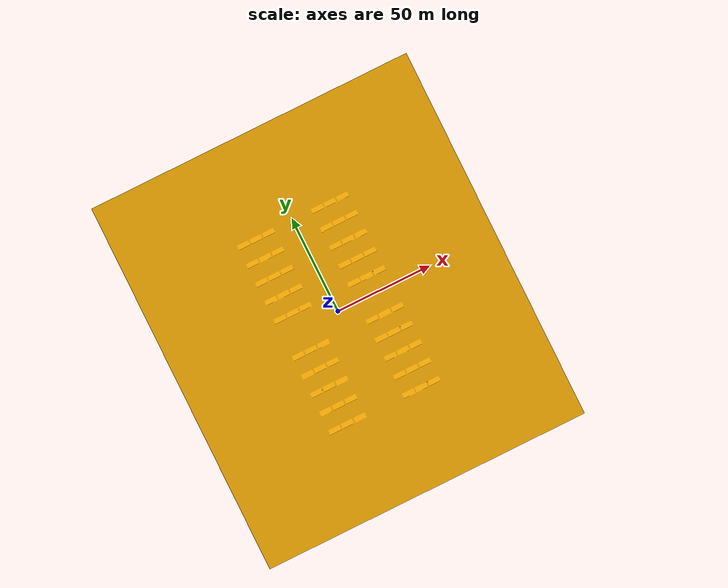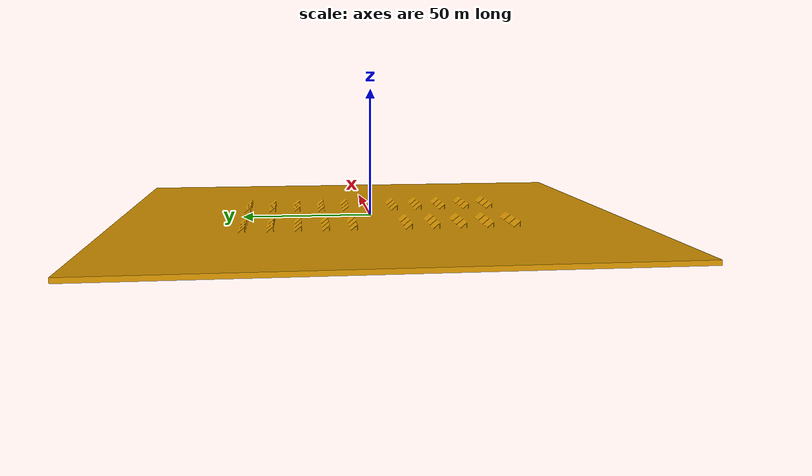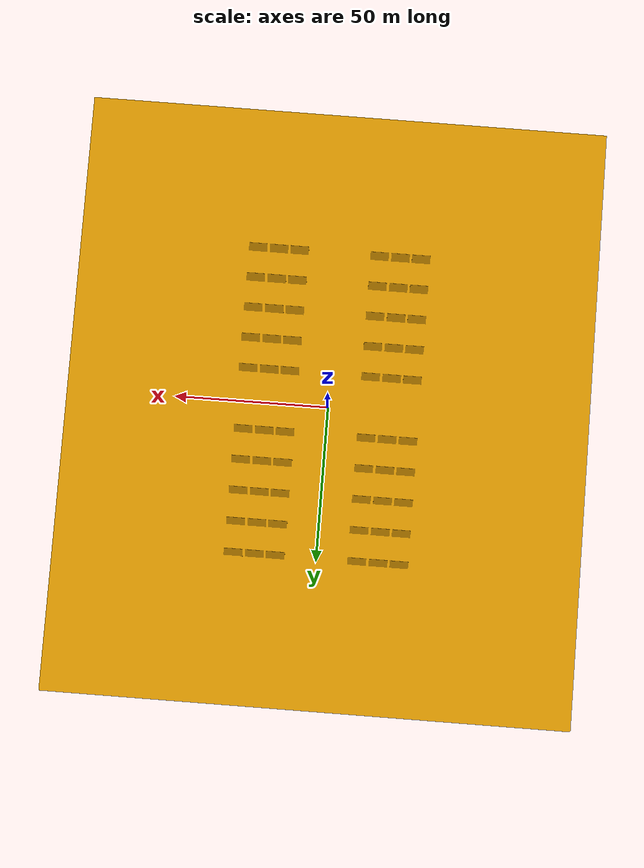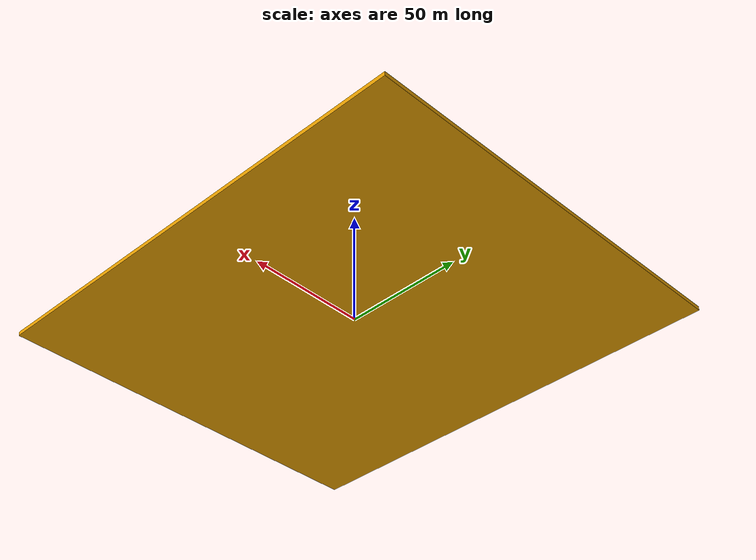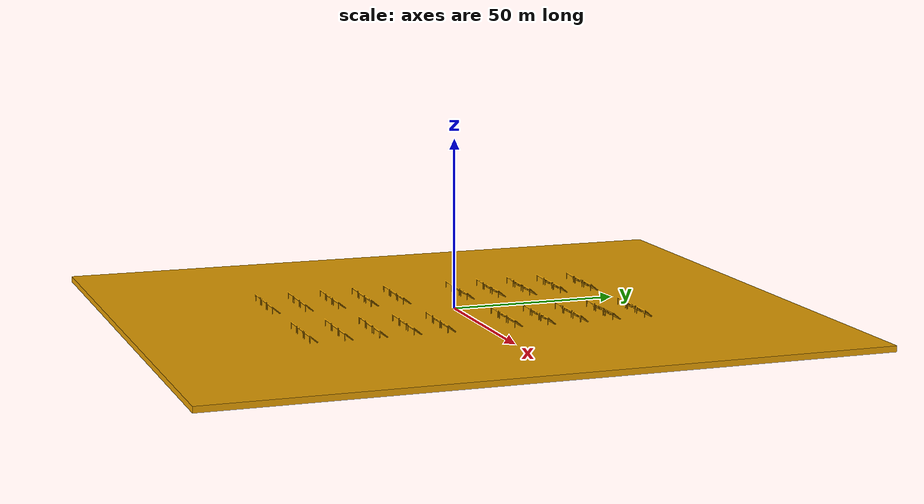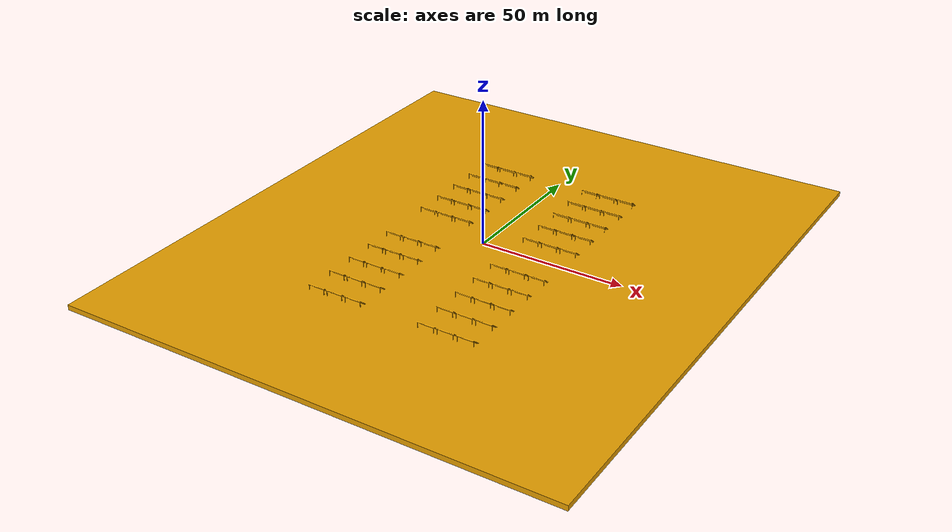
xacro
<?xml version="1.0"?>
<robot name="agriculture_world" xmlns:xacro="http://www.ros.org/wiki/xacro">
  <link name="world">
    <inertial>
      <origin xyz="0 0 0" rpy="0 0 0"/>
      <mass value="1"/>
      <inertia ixx="1" ixy="0" ixz="0" iyy="1" iyz="0" izz="1"/>
    </inertial>

    <visual>
      <origin xyz="0 0 0" rpy="0 0 0"/>
      <geometry>
        <mesh filename="package://cpr_agriculture_gazebo/meshes/agriculture_world.dae"/>
        <scale>2.25 2.25 1</scale>
      </geometry>
    </visual>

    <collision>
      <origin xyz="0 0 0" rpy="0 0 0"/>
      <geometry>
        <mesh filename="package://cpr_agriculture_gazebo/meshes/agriculture_world.dae"/>
                <scale>2.25 2.25 1</scale>

      </geometry>
      <surface>
        <friction>
          <ode>
            <mu>100</mu>
            <mu2>50</mu2>
          </ode>
        </friction>
    </surface>
    </collision>
  </link>

  <gazebo> <static>true</static></gazebo>
</robot>
